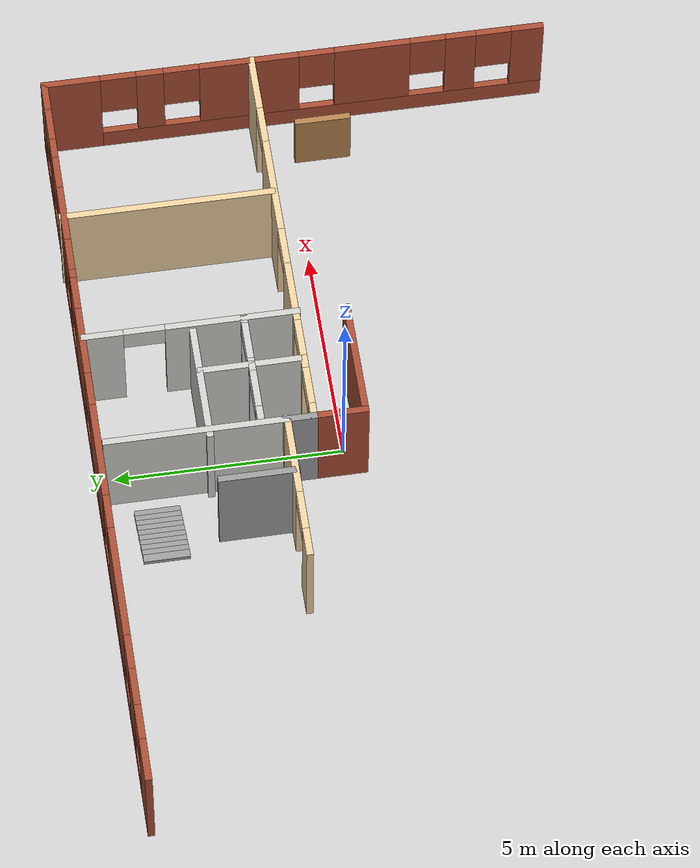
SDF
<sdf version="1.6">
 <world name="default">
  <model name="ground_plane">
   <static>1</static>
   <link name="link">
    <collision name="collision">
     <geometry><plane><normal>0 0 1</normal><size>100 100</size></plane></geometry>
     <surface><friction><ode><mu>100</mu><mu2>50</mu2></ode></friction></surface>
    </collision>
    <visual name="visual">
     <cast_shadows>0</cast_shadows>
     <geometry><plane><normal>0 0 1</normal><size>100 100</size></plane></geometry>
     <material>
      <script><uri>file://media/materials/scripts/gazebo.material</uri><name>Gazebo/Grey</name></script>
     </material>
    </visual>
   </link>
  </model>
  <model name="Building">
   <pose>-0.293126 -0.203944 0 0 -0 0</pose>
   <link name="Stairs_2">
    <visual name="Stairs_2_Visual_0">
     <pose>-0.680228 4.38796 0.05 0 0 -1.5708</pose>
     <geometry><box><size>1 0.18 0.1</size></box></geometry>
     <material>
      <script><uri>file://media/materials/scripts/gazebo.material</uri><name>Gazebo/Grey</name></script>
      <ambient>1 1 1 1</ambient>
     </material>
     <meta><layer>0</layer></meta>
    </visual>
    <collision name="Stairs_2_Collision_0">
     <geometry><box><size>1 0.18 0.1</size></box></geometry>
     <pose>-0.680228 4.38796 0.05 0 0 -1.5708</pose>
    </collision>
    <visual name="Stairs_2_Visual_1">
     <pose>-0.860228 4.38796 0.15 0 0 -1.5708</pose>
     <geometry><box><size>1 0.18 0.1</size></box></geometry>
     <material>
      <script><uri>file://media/materials/scripts/gazebo.material</uri><name>Gazebo/Grey</name></script>
      <ambient>1 1 1 1</ambient>
     </material>
     <meta><layer>0</layer></meta>
    </visual>
    <collision name="Stairs_2_Collision_1">
     <geometry><box><size>1 0.18 0.1</size></box></geometry>
     <pose>-0.860228 4.38796 0.15 0 0 -1.5708</pose>
    </collision>
    <visual name="Stairs_2_Visual_2">
     <pose>-1.04023 4.38796 0.25 0 0 -1.5708</pose>
     <geometry><box><size>1 0.18 0.1</size></box></geometry>
     <material>
      <script><uri>file://media/materials/scripts/gazebo.material</uri><name>Gazebo/Grey</name></script>
      <ambient>1 1 1 1</ambient>
     </material>
     <meta><layer>0</layer></meta>
    </visual>
    <collision name="Stairs_2_Collision_2">
     <geometry><box><size>1 0.18 0.1</size></box></geometry>
     <pose>-1.04023 4.38796 0.25 0 0 -1.5708</pose>
    </collision>
    <visual name="Stairs_2_Visual_3">
     <pose>-1.22023 4.38796 0.35 0 0 -1.5708</pose>
     <geometry><box><size>1 0.18 0.1</size></box></geometry>
     <material>
      <script><uri>file://media/materials/scripts/gazebo.material</uri><name>Gazebo/Grey</name></script>
      <ambient>1 1 1 1</ambient>
     </material>
     <meta><layer>0</layer></meta>
    </visual>
    <collision name="Stairs_2_Collision_3">
     <geometry><box><size>1 0.18 0.1</size></box></geometry>
     <pose>-1.22023 4.38796 0.35 0 0 -1.5708</pose>
    </collision>
    <visual name="Stairs_2_Visual_4">
     <pose>-1.40023 4.38796 0.45 0 0 -1.5708</pose>
     <geometry><box><size>1 0.18 0.1</size></box></geometry>
     <material>
      <script><uri>file://media/materials/scripts/gazebo.material</uri><name>Gazebo/Grey</name></script>
      <ambient>1 1 1 1</ambient>
     </material>
     <meta><layer>0</layer></meta>
    </visual>
    <collision name="Stairs_2_Collision_4">
     <geometry><box><size>1 0.18 0.1</size></box></geometry>
     <pose>-1.40023 4.38796 0.45 0 0 -1.5708</pose>
    </collision>
    <visual name="Stairs_2_Visual_5">
     <pose>-1.58023 4.38796 0.55 0 0 -1.5708</pose>
     <geometry><box><size>1 0.18 0.1</size></box></geometry>
     <material>
      <script><uri>file://media/materials/scripts/gazebo.material</uri><name>Gazebo/Grey</name></script>
      <ambient>1 1 1 1</ambient>
     </material>
     <meta><layer>0</layer></meta>
    </visual>
    <collision name="Stairs_2_Collision_5">
     <geometry><box><size>1 0.18 0.1</size></box></geometry>
     <pose>-1.58023 4.38796 0.55 0 0 -1.5708</pose>
    </collision>
    <visual name="Stairs_2_Visual_6">
     <pose>-1.76023 4.38796 0.65 0 0 -1.5708</pose>
     <geometry><box><size>1 0.18 0.1</size></box></geometry>
     <material>
      <script><uri>file://media/materials/scripts/gazebo.material</uri><name>Gazebo/Grey</name></script>
      <ambient>1 1 1 1</ambient>
     </material>
     <meta><layer>0</layer></meta>
    </visual>
    <collision name="Stairs_2_Collision_6">
     <geometry><box><size>1 0.18 0.1</size></box></geometry>
     <pose>-1.76023 4.38796 0.65 0 0 -1.5708</pose>
    </collision>
    <visual name="Stairs_2_Visual_7">
     <pose>-1.94023 4.38796 0.75 0 0 -1.5708</pose>
     <geometry><box><size>1 0.18 0.1</size></box></geometry>
     <material>
      <script><uri>file://media/materials/scripts/gazebo.material</uri><name>Gazebo/Grey</name></script>
      <ambient>1 1 1 1</ambient>
     </material>
     <meta><layer>0</layer></meta>
    </visual>
    <collision name="Stairs_2_Collision_7">
     <geometry><box><size>1 0.18 0.1</size></box></geometry>
     <pose>-1.94023 4.38796 0.75 0 0 -1.5708</pose>
    </collision>
    <visual name="Stairs_2_Visual_8">
     <pose>-2.12023 4.38796 0.85 0 0 -1.5708</pose>
     <geometry><box><size>1 0.18 0.1</size></box></geometry>
     <material>
      <script><uri>file://media/materials/scripts/gazebo.material</uri><name>Gazebo/Grey</name></script>
      <ambient>1 1 1 1</ambient>
     </material>
     <meta><layer>0</layer></meta>
    </visual>
    <collision name="Stairs_2_Collision_8">
     <geometry><box><size>1 0.18 0.1</size></box></geometry>
     <pose>-2.12023 4.38796 0.85 0 0 -1.5708</pose>
    </collision>
    <visual name="Stairs_2_Visual_9">
     <pose>-2.30023 4.38796 0.95 0 0 -1.5708</pose>
     <geometry><box><size>1 0.18 0.1</size></box></geometry>
     <material>
      <script><uri>file://media/materials/scripts/gazebo.material</uri><name>Gazebo/Grey</name></script>
      <ambient>1 1 1 1</ambient>
     </material>
     <meta><layer>0</layer></meta>
    </visual>
    <collision name="Stairs_2_Collision_9">
     <geometry><box><size>1 0.18 0.1</size></box></geometry>
     <pose>-2.30023 4.38796 0.95 0 0 -1.5708</pose>
    </collision>
   </link>
   <link name="Wall_0">
    <pose>0.434915 5.53865 0 0 -0 0</pose>
    <visual name="Wall_0_Visual_0">
     <pose>-8.26944 0 1.25 0 -0 0</pose>
     <geometry><box><size>0.961111 0.15 2.5</size></box></geometry>
     <material>
      <script><uri>file://media/materials/scripts/gazebo.material</uri><name>Gazebo/Bricks</name></script>
      <ambient>1 1 1 1</ambient>
     </material>
     <meta><layer>0</layer></meta>
    </visual>
    <collision name="Wall_0_Collision_0">
     <geometry><box><size>0.961111 0.15 2.5</size></box></geometry>
     <pose>-8.26944 0 1.25 0 -0 0</pose>
    </collision>
    <visual name="Wall_0_Visual_1">
     <pose>0.480555 0 0.25 0 -0 0</pose>
     <geometry><box><size>16.5389 0.15 0.5</size></box></geometry>
     <material>
      <script><uri>file://media/materials/scripts/gazebo.material</uri><name>Gazebo/Bricks</name></script>
      <ambient>1 1 1 1</ambient>
     </material>
     <meta><layer>0</layer></meta>
    </visual>
    <collision name="Wall_0_Collision_1">
     <geometry><box><size>16.5389 0.15 0.5</size></box></geometry>
     <pose>0.480555 0 0.25 0 -0 0</pose>
    </collision>
    <visual name="Wall_0_Visual_2">
     <pose>-6.56423 0 1.5 0 -0 0</pose>
     <geometry><box><size>0.849313 0.15 2</size></box></geometry>
     <material>
      <script><uri>file://media/materials/scripts/gazebo.material</uri><name>Gazebo/Bricks</name></script>
      <ambient>1 1 1 1</ambient>
     </material>
     <meta><layer>0</layer></meta>
    </visual>
    <collision name="Wall_0_Collision_2">
     <geometry><box><size>0.849313 0.15 2</size></box></geometry>
     <pose>-6.56423 0 1.5 0 -0 0</pose>
    </collision>
    <visual name="Wall_0_Visual_3">
     <pose>-4.04638 0 1.5 0 -0 0</pose>
     <geometry><box><size>2.5864 0.15 2</size></box></geometry>
     <material>
      <script><uri>file://media/materials/scripts/gazebo.material</uri><name>Gazebo/Bricks</name></script>
      <ambient>1 1 1 1</ambient>
     </material>
     <meta><layer>0</layer></meta>
    </visual>
    <collision name="Wall_0_Collision_3">
     <geometry><box><size>2.5864 0.15 2</size></box></geometry>
     <pose>-4.04638 0 1.5 0 -0 0</pose>
    </collision>
    <visual name="Wall_0_Visual_4">
     <pose>-0.828204 0 1.5 0 -0 0</pose>
     <geometry><box><size>2.24994 0.15 2</size></box></geometry>
     <material>
      <script><uri>file://media/materials/scripts/gazebo.material</uri><name>Gazebo/Bricks</name></script>
      <ambient>1 1 1 1</ambient>
     </material>
     <meta><layer>0</layer></meta>
    </visual>
    <collision name="Wall_0_Collision_4">
     <geometry><box><size>2.24994 0.15 2</size></box></geometry>
     <pose>-0.828204 0 1.5 0 -0 0</pose>
    </collision>
    <visual name="Wall_0_Visual_5">
     <pose>1.92369 0 1.5 0 -0 0</pose>
     <geometry><box><size>1.65386 0.15 2</size></box></geometry>
     <material>
      <script><uri>file://media/materials/scripts/gazebo.material</uri><name>Gazebo/Bricks</name></script>
      <ambient>1 1 1 1</ambient>
     </material>
     <meta><layer>0</layer></meta>
    </visual>
    <collision name="Wall_0_Collision_5">
     <geometry><box><size>1.65386 0.15 2</size></box></geometry>
     <pose>1.92369 0 1.5 0 -0 0</pose>
    </collision>
    <visual name="Wall_0_Visual_6">
     <pose>3.65346 0 1.5 0 -0 0</pose>
     <geometry><box><size>0.205679 0.15 2</size></box></geometry>
     <material>
      <script><uri>file://media/materials/scripts/gazebo.material</uri><name>Gazebo/Bricks</name></script>
      <ambient>1 1 1 1</ambient>
     </material>
     <meta><layer>0</layer></meta>
    </visual>
    <collision name="Wall_0_Collision_6">
     <geometry><box><size>0.205679 0.15 2</size></box></geometry>
     <pose>3.65346 0 1.5 0 -0 0</pose>
    </collision>
    <visual name="Wall_0_Visual_7">
     <pose>5.24243 0 1.5 0 -0 0</pose>
     <geometry><box><size>1.37227 0.15 2</size></box></geometry>
     <material>
      <script><uri>file://media/materials/scripts/gazebo.material</uri><name>Gazebo/Bricks</name></script>
      <ambient>1 1 1 1</ambient>
     </material>
     <meta><layer>0</layer></meta>
    </visual>
    <collision name="Wall_0_Collision_7">
     <geometry><box><size>1.37227 0.15 2</size></box></geometry>
     <pose>5.24243 0 1.5 0 -0 0</pose>
    </collision>
    <visual name="Wall_0_Visual_8">
     <pose>6.9722 0 1.5 0 -0 0</pose>
     <geometry><box><size>0.487269 0.15 2</size></box></geometry>
     <material>
      <script><uri>file://media/materials/scripts/gazebo.material</uri><name>Gazebo/Bricks</name></script>
      <ambient>1 1 1 1</ambient>
     </material>
     <meta><layer>0</layer></meta>
    </visual>
    <collision name="Wall_0_Collision_8">
     <geometry><box><size>0.487269 0.15 2</size></box></geometry>
     <pose>6.9722 0 1.5 0 -0 0</pose>
    </collision>
    <visual name="Wall_0_Visual_9">
     <pose>8.38292 0 1.5 0 -0 0</pose>
     <geometry><box><size>0.734164 0.15 2</size></box></geometry>
     <material>
      <script><uri>file://media/materials/scripts/gazebo.material</uri><name>Gazebo/Bricks</name></script>
      <ambient>1 1 1 1</ambient>
     </material>
     <meta><layer>0</layer></meta>
    </visual>
    <collision name="Wall_0_Collision_9">
     <geometry><box><size>0.734164 0.15 2</size></box></geometry>
     <pose>8.38292 0 1.5 0 -0 0</pose>
    </collision>
    <visual name="Wall_0_Visual_10">
     <pose>-7.38889 0 1.9 0 -0 0</pose>
     <geometry><box><size>0.8 0.15 1.2</size></box></geometry>
     <material>
      <script><uri>file://media/materials/scripts/gazebo.material</uri><name>Gazebo/Bricks</name></script>
      <ambient>1 1 1 1</ambient>
     </material>
     <meta><layer>0</layer></meta>
    </visual>
    <collision name="Wall_0_Collision_10">
     <geometry><box><size>0.8 0.15 1.2</size></box></geometry>
     <pose>-7.38889 0 1.9 0 -0 0</pose>
    </collision>
    <visual name="Wall_0_Visual_11">
     <pose>-5.73958 0 1.9 0 -0 0</pose>
     <geometry><box><size>0.8 0.15 1.2</size></box></geometry>
     <material>
      <script><uri>file://media/materials/scripts/gazebo.material</uri><name>Gazebo/Bricks</name></script>
      <ambient>1 1 1 1</ambient>
     </material>
     <meta><layer>0</layer></meta>
    </visual>
    <collision name="Wall_0_Collision_11">
     <geometry><box><size>0.8 0.15 1.2</size></box></geometry>
     <pose>-5.73958 0 1.9 0 -0 0</pose>
    </collision>
    <visual name="Wall_0_Visual_12">
     <pose>-2.35317 0 1.9 0 -0 0</pose>
     <geometry><box><size>0.8 0.15 1.2</size></box></geometry>
     <material>
      <script><uri>file://media/materials/scripts/gazebo.material</uri><name>Gazebo/Bricks</name></script>
      <ambient>1 1 1 1</ambient>
     </material>
     <meta><layer>0</layer></meta>
    </visual>
    <collision name="Wall_0_Collision_12">
     <geometry><box><size>0.8 0.15 1.2</size></box></geometry>
     <pose>-2.35317 0 1.9 0 -0 0</pose>
    </collision>
    <visual name="Wall_0_Visual_13">
     <pose>0.696767 0 1.9 0 -0 0</pose>
     <geometry><box><size>0.8 0.15 1.2</size></box></geometry>
     <material>
      <script><uri>file://media/materials/scripts/gazebo.material</uri><name>Gazebo/Bricks</name></script>
      <ambient>1 1 1 1</ambient>
     </material>
     <meta><layer>0</layer></meta>
    </visual>
    <collision name="Wall_0_Collision_13">
     <geometry><box><size>0.8 0.15 1.2</size></box></geometry>
     <pose>0.696767 0 1.9 0 -0 0</pose>
    </collision>
    <visual name="Wall_0_Visual_14">
     <pose>3.15062 0 1.9 0 -0 0</pose>
     <geometry><box><size>0.8 0.15 1.2</size></box></geometry>
     <material>
      <script><uri>file://media/materials/scripts/gazebo.material</uri><name>Gazebo/Bricks</name></script>
      <ambient>1 1 1 1</ambient>
     </material>
     <meta><layer>0</layer></meta>
    </visual>
    <collision name="Wall_0_Collision_14">
     <geometry><box><size>0.8 0.15 1.2</size></box></geometry>
     <pose>3.15062 0 1.9 0 -0 0</pose>
    </collision>
    <visual name="Wall_0_Visual_15">
     <pose>4.1563 0 1.9 0 -0 0</pose>
     <geometry><box><size>0.8 0.15 1.2</size></box></geometry>
     <material>
      <script><uri>file://media/materials/scripts/gazebo.material</uri><name>Gazebo/Bricks</name></script>
      <ambient>1 1 1 1</ambient>
     </material>
     <meta><layer>0</layer></meta>
    </visual>
    <collision name="Wall_0_Collision_15">
     <geometry><box><size>0.8 0.15 1.2</size></box></geometry>
     <pose>4.1563 0 1.9 0 -0 0</pose>
    </collision>
    <visual name="Wall_0_Visual_16">
     <pose>6.32857 0 1.9 0 -0 0</pose>
     <geometry><box><size>0.8 0.15 1.2</size></box></geometry>
     <material>
      <script><uri>file://media/materials/scripts/gazebo.material</uri><name>Gazebo/Bricks</name></script>
      <ambient>1 1 1 1</ambient>
     </material>
     <meta><layer>0</layer></meta>
    </visual>
    <collision name="Wall_0_Collision_16">
     <geometry><box><size>0.8 0.15 1.2</size></box></geometry>
     <pose>6.32857 0 1.9 0 -0 0</pose>
    </collision>
    <visual name="Wall_0_Visual_17">
     <pose>7.61584 0 1.9 0 -0 0</pose>
     <geometry><box><size>0.8 0.15 1.2</size></box></geometry>
     <material>
      <script><uri>file://media/materials/scripts/gazebo.material</uri><name>Gazebo/Bricks</name></script>
      <ambient>1 1 1 1</ambient>
     </material>
     <meta><layer>0</layer></meta>
    </visual>
    <collision name="Wall_0_Collision_17">
     <geometry><box><size>0.8 0.15 1.2</size></box></geometry>
     <pose>7.61584 0 1.9 0 -0 0</pose>
    </collision>
   </link>
   <link name="Wall_2">
    <pose>9.10991 -0.011353 0 0 0 -1.5708</pose>
    <visual name="Wall_2_Visual_0">
     <pose>-4.96991 0 1.25 0 -0 0</pose>
     <geometry><box><size>1.31017 0.15 2.5</size></box></geometry>
     <material>
      <script><uri>file://media/materials/scripts/gazebo.material</uri><name>Gazebo/Bricks</name></script>
      <ambient>0 0.666667 0.498039 1</ambient>
     </material>
     <meta><layer>0</layer></meta>
    </visual>
    <collision name="Wall_2_Collision_0">
     <geometry><box><size>1.31017 0.15 2.5</size></box></geometry>
     <pose>-4.96991 0 1.25 0 -0 0</pose>
    </collision>
    <visual name="Wall_2_Visual_1">
     <pose>0.655087 0 0.25 0 -0 0</pose>
     <geometry><box><size>9.93983 0.15 0.5</size></box></geometry>
     <material>
      <script><uri>file://media/materials/scripts/gazebo.material</uri><name>Gazebo/Bricks</name></script>
      <ambient>0 0.666667 0.498039 1</ambient>
     </material>
     <meta><layer>0</layer></meta>
    </visual>
    <collision name="Wall_2_Collision_1">
     <geometry><box><size>9.93983 0.15 0.5</size></box></geometry>
     <pose>0.655087 0 0.25 0 -0 0</pose>
    </collision>
    <visual name="Wall_2_Visual_2">
     <pose>-3.21085 0 1.5 0 -0 0</pose>
     <geometry><box><size>0.60795 0.15 2</size></box></geometry>
     <material>
      <script><uri>file://media/materials/scripts/gazebo.material</uri><name>Gazebo/Bricks</name></script>
      <ambient>0 0.666667 0.498039 1</ambient>
     </material>
     <meta><layer>0</layer></meta>
    </visual>
    <collision name="Wall_2_Collision_2">
     <geometry><box><size>0.60795 0.15 2</size></box></geometry>
     <pose>-3.21085 0 1.5 0 -0 0</pose>
    </collision>
    <visual name="Wall_2_Visual_3">
     <pose>-0.992199 0 1.5 0 -0 0</pose>
     <geometry><box><size>2.22935 0.15 2</size></box></geometry>
     <material>
      <script><uri>file://media/materials/scripts/gazebo.material</uri><name>Gazebo/Bricks</name></script>
      <ambient>0 0.666667 0.498039 1</ambient>
     </material>
     <meta><layer>0</layer></meta>
    </visual>
    <collision name="Wall_2_Collision_3">
     <geometry><box><size>2.22935 0.15 2</size></box></geometry>
     <pose>-0.992199 0 1.5 0 -0 0</pose>
    </collision>
    <visual name="Wall_2_Visual_4">
     <pose>1.77153 0 1.5 0 -0 0</pose>
     <geometry><box><size>1.69811 0.15 2</size></box></geometry>
     <material>
      <script><uri>file://media/materials/scripts/gazebo.material</uri><name>Gazebo/Bricks</name></script>
      <ambient>0 0.666667 0.498039 1</ambient>
     </material>
     <meta><layer>0</layer></meta>
    </visual>
    <collision name="Wall_2_Collision_4">
     <geometry><box><size>1.69811 0.15 2</size></box></geometry>
     <pose>1.77153 0 1.5 0 -0 0</pose>
    </collision>
    <visual name="Wall_2_Visual_5">
     <pose>3.76076 0 1.5 0 -0 0</pose>
     <geometry><box><size>0.680358 0.15 2</size></box></geometry>
     <material>
      <script><uri>file://media/materials/scripts/gazebo.material</uri><name>Gazebo/Bricks</name></script>
      <ambient>0 0.666667 0.498039 1</ambient>
     </material>
     <meta><layer>0</layer></meta>
    </visual>
    <collision name="Wall_2_Collision_5">
     <geometry><box><size>0.680358 0.15 2</size></box></geometry>
     <pose>3.76076 0 1.5 0 -0 0</pose>
    </collision>
    <visual name="Wall_2_Visual_6">
     <pose>5.26297 0 1.5 0 -0 0</pose>
     <geometry><box><size>0.724057 0.15 2</size></box></geometry>
     <material>
      <script><uri>file://media/materials/scripts/gazebo.material</uri><name>Gazebo/Bricks</name></script>
      <ambient>0 0.666667 0.498039 1</ambient>
     </material>
     <meta><layer>0</layer></meta>
    </visual>
    <collision name="Wall_2_Collision_6">
     <geometry><box><size>0.724057 0.15 2</size></box></geometry>
     <pose>5.26297 0 1.5 0 -0 0</pose>
    </collision>
    <visual name="Wall_2_Visual_7">
     <pose>-3.91483 0 1.9 0 -0 0</pose>
     <geometry><box><size>0.8 0.15 1.2</size></box></geometry>
     <material>
      <script><uri>file://media/materials/scripts/gazebo.material</uri><name>Gazebo/Bricks</name></script>
      <ambient>0 0.666667 0.498039 1</ambient>
     </material>
     <meta><layer>0</layer></meta>
    </visual>
    <collision name="Wall_2_Collision_7">
     <geometry><box><size>0.8 0.15 1.2</size></box></geometry>
     <pose>-3.91483 0 1.9 0 -0 0</pose>
    </collision>
    <visual name="Wall_2_Visual_8">
     <pose>-2.50688 0 1.9 0 -0 0</pose>
     <geometry><box><size>0.8 0.15 1.2</size></box></geometry>
     <material>
      <script><uri>file://media/materials/scripts/gazebo.material</uri><name>Gazebo/Bricks</name></script>
      <ambient>0 0.666667 0.498039 1</ambient>
     </material>
     <meta><layer>0</layer></meta>
    </visual>
    <collision name="Wall_2_Collision_8">
     <geometry><box><size>0.8 0.15 1.2</size></box></geometry>
     <pose>-2.50688 0 1.9 0 -0 0</pose>
    </collision>
    <visual name="Wall_2_Visual_9">
     <pose>0.522479 0 1.9 0 -0 0</pose>
     <geometry><box><size>0.8 0.15 1.2</size></box></geometry>
     <material>
      <script><uri>file://media/materials/scripts/gazebo.material</uri><name>Gazebo/Bricks</name></script>
      <ambient>0 0.666667 0.498039 1</ambient>
     </material>
     <meta><layer>0</layer></meta>
    </visual>
    <collision name="Wall_2_Collision_9">
     <geometry><box><size>0.8 0.15 1.2</size></box></geometry>
     <pose>0.522479 0 1.9 0 -0 0</pose>
    </collision>
    <visual name="Wall_2_Visual_10">
     <pose>3.02059 0 1.9 0 -0 0</pose>
     <geometry><box><size>0.8 0.15 1.2</size></box></geometry>
     <material>
      <script><uri>file://media/materials/scripts/gazebo.material</uri><name>Gazebo/Bricks</name></script>
      <ambient>0 0.666667 0.498039 1</ambient>
     </material>
     <meta><layer>0</layer></meta>
    </visual>
    <collision name="Wall_2_Collision_10">
     <geometry><box><size>0.8 0.15 1.2</size></box></geometry>
     <pose>3.02059 0 1.9 0 -0 0</pose>
    </collision>
    <visual name="Wall_2_Visual_11">
     <pose>4.50094 0 1.9 0 -0 0</pose>
     <geometry><box><size>0.8 0.15 1.2</size></box></geometry>
     <material>
      <script><uri>file://media/materials/scripts/gazebo.material</uri><name>Gazebo/Bricks</name></script>
      <ambient>0 0.666667 0.498039 1</ambient>
     </material>
     <meta><layer>0</layer></meta>
    </visual>
    <collision name="Wall_2_Collision_11">
     <geometry><box><size>0.8 0.15 1.2</size></box></geometry>
     <pose>4.50094 0 1.9 0 -0 0</pose>
    </collision>
   </link>
   <link name="Wall_35">
    <pose>-1.85267 1.50582 0 0 0 -0.0048</pose>
    <visual name="Wall_35_Visual_0">
     <pose>-1.40365 0 1.25 0 -0 0</pose>
     <geometry><box><size>0.648961 0.15 2.5</size></box></geometry>
     <material>
      <script><uri>file://media/materials/scripts/gazebo.material</uri><name>Gazebo/Grey</name></script>
      <ambient>0.921569 0.807843 0.615686 1</ambient>
     </material>
     <meta><layer>0</layer></meta>
    </visual>
    <collision name="Wall_35_Collision_0">
     <geometry><box><size>0.648961 0.15 2.5</size></box></geometry>
     <pose>-1.40365 0 1.25 0 -0 0</pose>
    </collision>
    <visual name="Wall_35_Visual_1">
     <pose>0.77448 0 1.25 0 -0 0</pose>
     <geometry><box><size>1.90729 0.15 2.5</size></box></geometry>
     <material>
      <script><uri>file://media/materials/scripts/gazebo.material</uri><name>Gazebo/Grey</name></script>
      <ambient>0.921569 0.807843 0.615686 1</ambient>
     </material>
     <meta><layer>0</layer></meta>
    </visual>
    <collision name="Wall_35_Collision_1">
     <geometry><box><size>1.90729 0.15 2.5</size></box></geometry>
     <pose>0.77448 0 1.25 0 -0 0</pose>
    </collision>
    <visual name="Wall_35_Visual_2">
     <pose>-0.629166 0 2.25 0 -0 0</pose>
     <geometry><box><size>0.9 0.15 0.5</size></box></geometry>
     <material>
      <script><uri>file://media/materials/scripts/gazebo.material</uri><name>Gazebo/Grey</name></script>
      <ambient>0.921569 0.807843 0.615686 1</ambient>
     </material>
     <meta><layer>0</layer></meta>
    </visual>
    <collision name="Wall_35_Collision_2">
     <geometry><box><size>0.9 0.15 0.5</size></box></geometry>
     <pose>-0.629166 0 2.25 0 -0 0</pose>
    </collision>
   </link>
   <link name="Wall_39">
    <collision name="Wall_39_Collision">
     <geometry><box><size>4 0.15 2.5</size></box></geometry>
     <pose>0 0 1.25 0 -0 0</pose>
    </collision>
    <visual name="Wall_39_Visual">
     <pose>0 0 1.25 0 -0 0</pose>
     <geometry><box><size>4 0.15 2.5</size></box></geometry>
     <material>
      <script><uri>file://media/materials/scripts/gazebo.material</uri><name>Gazebo/CeilingTiled</name></script>
      <ambient>1 1 1 1</ambient>
     </material>
     <meta><layer>0</layer></meta>
    </visual>
    <pose>-0.226014 3.44933 0 0 -0 1.5708</pose>
   </link>
   <link name="Wall_45">
    <collision name="Wall_45_Collision">
     <geometry><box><size>1.75 0.15 2.5</size></box></geometry>
     <pose>0 0 1.25 0 -0 0</pose>
    </collision>
    <visual name="Wall_45_Visual">
     <pose>0 0 1.25 0 -0 0</pose>
     <geometry><box><size>1.75 0.15 2.5</size></box></geometry>
     <material>
      <script><uri>file://media/materials/scripts/gazebo.material</uri><name>Gazebo/Grey</name></script>
      <ambient>1 1 1 1</ambient>
     </material>
     <meta><layer>0</layer></meta>
    </visual>
    <pose>-1.48458 2.28897 0 0 0 -1.5708</pose>
   </link>
   <link name="Wall_47">
    <collision name="Wall_47_Collision">
     <geometry><box><size>0.75 0.15 2.5</size></box></geometry>
     <pose>0 0 1.25 0 -0 0</pose>
    </collision>
    <visual name="Wall_47_Visual">
     <pose>0 0 1.25 0 -0 0</pose>
     <geometry><box><size>0.75 0.15 2.5</size></box></geometry>
     <material>
      <script><uri>file://media/materials/scripts/gazebo.material</uri><name>Gazebo/Grey</name></script>
      <ambient>1 1 1 1</ambient>
     </material>
     <meta><layer>0</layer></meta>
    </visual>
    <pose>-0.226014 1.22433 0 0 0 -1.5708</pose>
   </link>
   <link name="Wall_48">
    <pose>4.44899 0.924331 0 0 -0 0</pose>
    <visual name="Wall_48_Visual_0">
     <pose>-4.55266 0 1.25 0 -0 0</pose>
     <geometry><box><size>0.394676 0.15 2.5</size></box></geometry>
     <material>
      <script><uri>file://media/materials/scripts/gazebo.material</uri><name>Gazebo/Grey</name></script>
      <ambient>0.921569 0.807843 0.615686 1</ambient>
     </material>
     <meta><layer>0</layer></meta>
    </visual>
    <collision name="Wall_48_Collision_0">
     <geometry><box><size>0.394676 0.15 2.5</size></box></geometry>
     <pose>-4.55266 0 1.25 0 -0 0</pose>
    </collision>
    <visual name="Wall_48_Visual_1">
     <pose>-3.29697 0 1.25 0 -0 0</pose>
     <geometry><box><size>0.3167 0.15 2.5</size></box></geometry>
     <material>
      <script><uri>file://media/materials/scripts/gazebo.material</uri><name>Gazebo/Grey</name></script>
      <ambient>0.921569 0.807843 0.615686 1</ambient>
     </material>
     <meta><layer>0</layer></meta>
    </visual>
    <collision name="Wall_48_Collision_1">
     <geometry><box><size>0.3167 0.15 2.5</size></box></geometry>
     <pose>-3.29697 0 1.25 0 -0 0</pose>
    </collision>
    <visual name="Wall_48_Visual_2">
     <pose>-1.50361 0 1.25 0 -0 0</pose>
     <geometry><box><size>1.47003 0.15 2.5</size></box></geometry>
     <material>
      <script><uri>file://media/materials/scripts/gazebo.material</uri><name>Gazebo/Grey</name></script>
      <ambient>0.921569 0.807843 0.615686 1</ambient>
     </material>
     <meta><layer>0</layer></meta>
    </visual>
    <collision name="Wall_48_Collision_2">
     <geometry><box><size>1.47003 0.15 2.5</size></box></geometry>
     <pose>-1.50361 0 1.25 0 -0 0</pose>
    </collision>
    <visual name="Wall_48_Visual_3">
     <pose>1.29486 0 1.25 0 -0 0</pose>
     <geometry><box><size>2.3269 0.15 2.5</size></box></geometry>
     <material>
      <script><uri>file://media/materials/scripts/gazebo.material</uri><name>Gazebo/Grey</name></script>
      <ambient>0.921569 0.807843 0.615686 1</ambient>
     </material>
     <meta><layer>0</layer></meta>
    </visual>
    <collision name="Wall_48_Collision_3">
     <geometry><box><size>2.3269 0.15 2.5</size></box></geometry>
     <pose>1.29486 0 1.25 0 -0 0</pose>
    </collision>
    <visual name="Wall_48_Visual_4">
     <pose>4.05415 0 1.25 0 -0 0</pose>
     <geometry><box><size>1.39169 0.15 2.5</size></box></geometry>
     <material>
      <script><uri>file://media/materials/scripts/gazebo.material</uri><name>Gazebo/Grey</name></script>
      <ambient>0.921569 0.807843 0.615686 1</ambient>
     </material>
     <meta><layer>0</layer></meta>
    </visual>
    <collision name="Wall_48_Collision_4">
     <geometry><box><size>1.39169 0.15 2.5</size></box></geometry>
     <pose>4.05415 0 1.25 0 -0 0</pose>
    </collision>
    <visual name="Wall_48_Visual_5">
     <pose>-3.90532 0 2.25 0 -0 0</pose>
     <geometry><box><size>0.9 0.15 0.5</size></box></geometry>
     <material>
      <script><uri>file://media/materials/scripts/gazebo.material</uri><name>Gazebo/Grey</name></script>
      <ambient>0.921569 0.807843 0.615686 1</ambient>
     </material>
     <meta><layer>0</layer></meta>
    </visual>
    <collision name="Wall_48_Collision_5">
     <geometry><box><size>0.9 0.15 0.5</size></box></geometry>
     <pose>-3.90532 0 2.25 0 -0 0</pose>
    </collision>
    <visual name="Wall_48_Visual_6">
     <pose>-2.68862 0 2.25 0 -0 0</pose>
     <geometry><box><size>0.9 0.15 0.5</size></box></geometry>
     <material>
      <script><uri>file://media/materials/scripts/gazebo.material</uri><name>Gazebo/Grey</name></script>
      <ambient>0.921569 0.807843 0.615686 1</ambient>
     </material>
     <meta><layer>0</layer></meta>
    </visual>
    <collision name="Wall_48_Collision_6">
     <geometry><box><size>0.9 0.15 0.5</size></box></geometry>
     <pose>-2.68862 0 2.25 0 -0 0</pose>
    </collision>
    <visual name="Wall_48_Visual_7">
     <pose>-0.318588 0 2.25 0 -0 0</pose>
     <geometry><box><size>0.9 0.15 0.5</size></box></geometry>
     <material>
      <script><uri>file://media/materials/scripts/gazebo.material</uri><name>Gazebo/Grey</name></script>
      <ambient>0.921569 0.807843 0.615686 1</ambient>
     </material>
     <meta><layer>0</layer></meta>
    </visual>
    <collision name="Wall_48_Collision_7">
     <geometry><box><size>0.9 0.15 0.5</size></box></geometry>
     <pose>-0.318588 0 2.25 0 -0 0</pose>
    </collision>
    <visual name="Wall_48_Visual_8">
     <pose>2.90831 0 2.25 0 -0 0</pose>
     <geometry><box><size>0.9 0.15 0.5</size></box></geometry>
     <material>
      <script><uri>file://media/materials/scripts/gazebo.material</uri><name>Gazebo/Grey</name></script>
      <ambient>0.921569 0.807843 0.615686 1</ambient>
     </material>
     <meta><layer>0</layer></meta>
    </visual>
    <collision name="Wall_48_Collision_8">
     <geometry><box><size>0.9 0.15 0.5</size></box></geometry>
     <pose>2.90831 0 2.25 0 -0 0</pose>
    </collision>
   </link>
   <link name="Wall_50">
    <collision name="Wall_50_Collision">
     <geometry><box><size>4.75 0.15 2.5</size></box></geometry>
     <pose>0 0 1.25 0 -0 0</pose>
    </collision>
    <visual name="Wall_50_Visual">
     <pose>0 0 1.25 0 -0 0</pose>
     <geometry><box><size>4.75 0.15 2.5</size></box></geometry>
     <material>
      <script><uri>file://media/materials/scripts/gazebo.material</uri><name>Gazebo/Grey</name></script>
      <ambient>0.921569 0.807843 0.615686 1</ambient>
     </material>
     <meta><layer>0</layer></meta>
    </visual>
    <pose>5.58515 3.27821 0 0 0 -1.5708</pose>
   </link>
   <link name="Wall_52">
    <pose>2.4376 3.19886 0 0 0 -1.5708</pose>
    <visual name="Wall_52_Visual_0">
     <pose>-1.91753 0 1.25 0 -0 0</pose>
     <geometry><box><size>0.914932 0.15 2.5</size></box></geometry>
     <material>
      <script><uri>file://media/materials/scripts/gazebo.material</uri><name>Gazebo/CeilingTiled</name></script>
      <ambient>1 1 1 1</ambient>
     </material>
     <meta><layer>0</layer></meta>
    </visual>
    <collision name="Wall_52_Collision_0">
     <geometry><box><size>0.914932 0.15 2.5</size></box></geometry>
     <pose>-1.91753 0 1.25 0 -0 0</pose>
    </collision>
    <visual name="Wall_52_Visual_1">
     <pose>0.907466 0 1.25 0 -0 0</pose>
     <geometry><box><size>2.93507 0.15 2.5</size></box></geometry>
     <material>
      <script><uri>file://media/materials/scripts/gazebo.material</uri><name>Gazebo/CeilingTiled</name></script>
      <ambient>1 1 1 1</ambient>
     </material>
     <meta><layer>0</layer></meta>
    </visual>
    <collision name="Wall_52_Collision_1">
     <geometry><box><size>2.93507 0.15 2.5</size></box></geometry>
     <pose>0.907466 0 1.25 0 -0 0</pose>
    </collision>
    <visual name="Wall_52_Visual_2">
     <pose>-1.01007 0 2.25 0 -0 0</pose>
     <geometry><box><size>0.9 0.15 0.5</size></box></geometry>
     <material>
      <script><uri>file://media/materials/scripts/gazebo.material</uri><name>Gazebo/CeilingTiled</name></script>
      <ambient>1 1 1 1</ambient>
     </material>
     <meta><layer>0</layer></meta>
    </visual>
    <collision name="Wall_52_Collision_2">
     <geometry><box><size>0.9 0.15 0.5</size></box></geometry>
     <pose>-1.01007 0 2.25 0 -0 0</pose>
    </collision>
   </link>
   <link name="Wall_54">
    <collision name="Wall_54_Collision">
     <geometry><box><size>2.75 0.15 2.5</size></box></geometry>
     <pose>0 0 1.25 0 -0 0</pose>
    </collision>
    <visual name="Wall_54_Visual">
     <pose>0 0 1.25 0 -0 0</pose>
     <geometry><box><size>2.75 0.15 2.5</size></box></geometry>
     <material>
      <script><uri>file://media/materials/scripts/gazebo.material</uri><name>Gazebo/CeilingTiled</name></script>
      <ambient>1 1 1 1</ambient>
     </material>
     <meta><layer>0</layer></meta>
    </visual>
    <pose>0.947545 3.17229 0 0 -0 0</pose>
   </link>
   <link name="Wall_56">
    <collision name="Wall_56_Collision">
     <geometry><box><size>2.25 0.15 2.5</size></box></geometry>
     <pose>0 0 1.25 0 -0 0</pose>
    </collision>
    <visual name="Wall_56_Visual">
     <pose>0 0 1.25 0 -0 0</pose>
     <geometry><box><size>2.25 0.15 2.5</size></box></geometry>
     <material>
      <script><uri>file://media/materials/scripts/gazebo.material</uri><name>Gazebo/CeilingTiled</name></script>
      <ambient>1 1 1 1</ambient>
     </material>
     <meta><layer>0</layer></meta>
    </visual>
    <pose>1.24327 2.09431 0 0 0 -1.5708</pose>
   </link>
   <link name="Wall_58">
    <pose>1.11364 2.04928 0 0 -0 0</pose>
    <visual name="Wall_58_Visual_0">
     <pose>-1.15186 0 1.25 0 -0 0</pose>
     <geometry><box><size>0.446272 0.15 2.5</size></box></geometry>
     <material>
      <script><uri>file://media/materials/scripts/gazebo.material</uri><name>Gazebo/CeilingTiled</name></script>
      <ambient>1 1 1 1</ambient>
     </material>
     <meta><layer>0</layer></meta>
    </visual>
    <collision name="Wall_58_Collision_0">
     <geometry><box><size>0.446272 0.15 2.5</size></box></geometry>
     <pose>-1.15186 0 1.25 0 -0 0</pose>
    </collision>
    <visual name="Wall_58_Visual_1">
     <pose>0.129622 0 1.25 0 -0 0</pose>
     <geometry><box><size>0.3167 0.15 2.5</size></box></geometry>
     <material>
      <script><uri>file://media/materials/scripts/gazebo.material</uri><name>Gazebo/CeilingTiled</name></script>
      <ambient>1 1 1 1</ambient>
     </material>
     <meta><layer>0</layer></meta>
    </visual>
    <collision name="Wall_58_Collision_1">
     <geometry><box><size>0.3167 0.15 2.5</size></box></geometry>
     <pose>0.129622 0 1.25 0 -0 0</pose>
    </collision>
    <visual name="Wall_58_Visual_2">
     <pose>1.28149 0 1.25 0 -0 0</pose>
     <geometry><box><size>0.187028 0.15 2.5</size></box></geometry>
     <material>
      <script><uri>file://media/materials/scripts/gazebo.material</uri><name>Gazebo/CeilingTiled</name></script>
      <ambient>1 1 1 1</ambient>
     </material>
     <meta><layer>0</layer></meta>
    </visual>
    <collision name="Wall_58_Collision_2">
     <geometry><box><size>0.187028 0.15 2.5</size></box></geometry>
     <pose>1.28149 0 1.25 0 -0 0</pose>
    </collision>
    <visual name="Wall_58_Visual_3">
     <pose>-0.478728 0 2.25 0 -0 0</pose>
     <geometry><box><size>0.9 0.15 0.5</size></box></geometry>
     <material>
      <script><uri>file://media/materials/scripts/gazebo.material</uri><name>Gazebo/CeilingTiled</name></script>
      <ambient>1 1 1 1</ambient>
     </material>
     <meta><layer>0</layer></meta>
    </visual>
    <collision name="Wall_58_Collision_3">
     <geometry><box><size>0.9 0.15 0.5</size></box></geometry>
     <pose>-0.478728 0 2.25 0 -0 0</pose>
    </collision>
    <visual name="Wall_58_Visual_4">
     <pose>0.737972 0 2.25 0 -0 0</pose>
     <geometry><box><size>0.9 0.15 0.5</size></box></geometry>
     <material>
      <script><uri>file://media/materials/scripts/gazebo.material</uri><name>Gazebo/CeilingTiled</name></script>
      <ambient>1 1 1 1</ambient>
     </material>
     <meta><layer>0</layer></meta>
    </visual>
    <collision name="Wall_58_Collision_4">
     <geometry><box><size>0.9 0.15 0.5</size></box></geometry>
     <pose>0.737972 0 2.25 0 -0 0</pose>
    </collision>
   </link>
   <link name="Wall_62">
    <collision name="Wall_62_Collision">
     <geometry><box><size>1.25 0.15 1.5</size></box></geometry>
     <pose>0 0 0.75 0 -0 0</pose>
    </collision>
    <visual name="Wall_62_Visual">
     <pose>0 0 0.75 0 -0 0</pose>
     <geometry><box><size>1.25 0.15 1.5</size></box></geometry>
     <material>
      <script><uri>file://media/materials/scripts/gazebo.material</uri><name>Gazebo/Wood</name></script>
      <ambient>1 1 1 1</ambient>
     </material>
     <meta><layer>0</layer></meta>
    </visual>
    <pose>8.01026 -0.507962 0 0 0 -1.5708</pose>
   </link>
   <link name="Wall_65">
    <collision name="Wall_65_Collision">
     <geometry><box><size>1.25 0.15 2.5</size></box></geometry>
     <pose>0 0 1.25 0 -0 0</pose>
    </collision>
    <visual name="Wall_65_Visual">
     <pose>0 0 1.25 0 -0 0</pose>
     <geometry><box><size>1.25 0.15 2.5</size></box></geometry>
     <material>
      <script><uri>file://media/materials/scripts/gazebo.material</uri><name>Gazebo/Bricks</name></script>
      <ambient>1 1 1 1</ambient>
     </material>
     <meta><layer>0</layer></meta>
    </visual>
    <pose>-0.226014 0.374331 0 0 0 -1.5708</pose>
   </link>
   <link name="Wall_66">
    <collision name="Wall_66_Collision">
     <geometry><box><size>2.75 0.15 2.5</size></box></geometry>
     <pose>0 0 1.25 0 -0 0</pose>
    </collision>
    <visual name="Wall_66_Visual">
     <pose>0 0 1.25 0 -0 0</pose>
     <geometry><box><size>2.75 0.15 2.5</size></box></geometry>
     <material>
      <script><uri>file://media/materials/scripts/gazebo.material</uri><name>Gazebo/Bricks</name></script>
      <ambient>1 1 1 1</ambient>
     </material>
     <meta><layer>0</layer></meta>
    </visual>
    <pose>1.07399 -0.175669 0 0 -0 0</pose>
   </link>
   <static>1</static>
  </model>
 </world>
</sdf>
